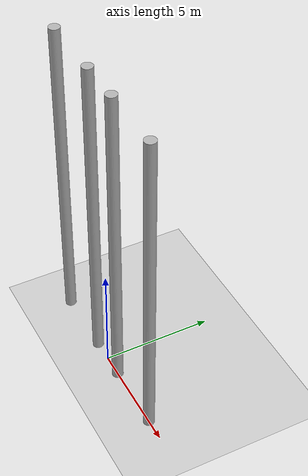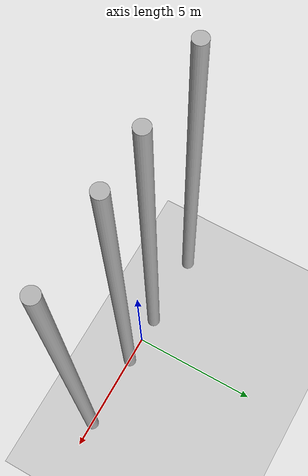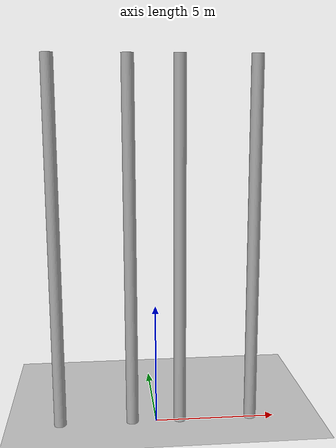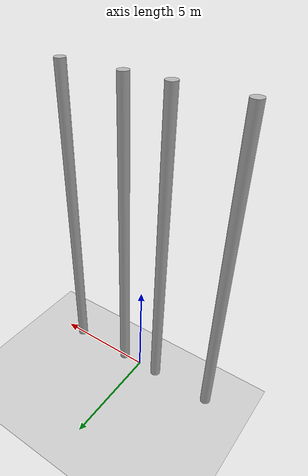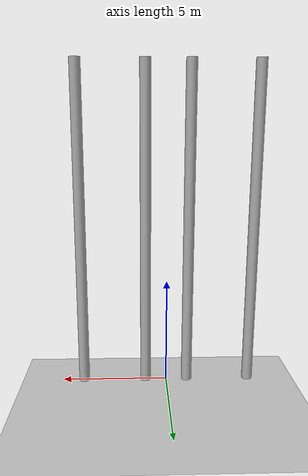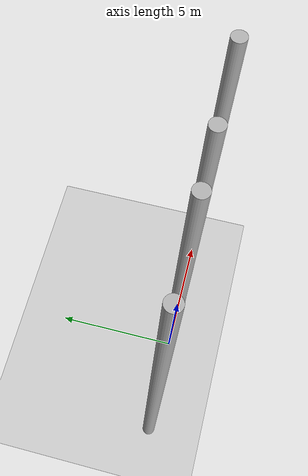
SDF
<?xml version="1.0" ?>
<sdf version="1.5">
  <world name="default">
    <!-- A global light source -->
    <include>
      <uri>model://sun</uri>
    </include>
    <!-- A ground plane -->
    <include>
      <uri>model://ground_plane</uri>
    </include>
    <physics name='default_physics' default='0' type='ode'>
      <gravity>0 0 -9.8066</gravity>
      <ode>
        <solver>
          <type>quick</type>
          <iters>10</iters>
          <sor>1.3</sor>
          <use_dynamic_moi_rescaling>0</use_dynamic_moi_rescaling>
        </solver>
        <constraints>
          <cfm>0</cfm>
          <erp>0.2</erp>
          <contact_max_correcting_vel>100</contact_max_correcting_vel>
          <contact_surface_layer>0.001</contact_surface_layer>
        </constraints>
      </ode>
      <max_step_size>0.002</max_step_size>
      <real_time_factor>1</real_time_factor>
      <real_time_update_rate>500</real_time_update_rate>
      <magnetic_field>6.0e-6 2.3e-5 -4.2e-5</magnetic_field>
    </physics>

    <!-- Cylinder Obstacles -->
    <model name="cylinder_1">
      <pose>1 0 7.5 0 0 0</pose>
      <link name="link">
        <visual name="visual">
          <geometry>
            <cylinder>
              <radius>0.25</radius>
              <length>15</length>
            </cylinder>
          </geometry>
          <material>
            <ambient>0.7 0.7 0.7 1</ambient>
          </material>
        </visual>
        <collision name="collision">
          <geometry>
            <cylinder>
              <radius>0.25</radius>
              <length>15</length>
            </cylinder>
          </geometry>
        </collision>
      </link>
    </model>

    <model name="cylinder_2">
      <pose>4 0 7.5 0 0 0</pose>
      <link name="link">
        <visual name="visual">
          <geometry>
            <cylinder>
              <radius>0.25</radius>
              <length>15</length>
            </cylinder>
          </geometry>
          <material>
            <ambient>0.7 0.7 0.7 1</ambient>
          </material>
        </visual>
        <collision name="collision">
          <geometry>
            <cylinder>
              <radius>0.25</radius>
              <length>15</length>
            </cylinder>
          </geometry>
        </collision>
      </link>
    </model>

    <model name="cylinder_3">
      <pose>-1 0 7.5 0 0 0</pose>
      <link name="link">
        <visual name="visual">
          <geometry>
            <cylinder>
              <radius>0.25</radius>
              <length>15</length>
            </cylinder>
          </geometry>
          <material>
            <ambient>0.7 0.7 0.7 1</ambient>
          </material>
        </visual>
        <collision name="collision">
          <geometry>
            <cylinder>
              <radius>0.25</radius>
              <length>15</length>
            </cylinder>
          </geometry>
        </collision>
      </link>
    </model>

    <model name="cylinder_4">
      <pose>-4 0 7.5 0 0 0</pose>
      <link name="link">
        <visual name="visual">
          <geometry>
            <cylinder>
              <radius>0.25</radius>
              <length>15</length>
            </cylinder>
          </geometry>
          <material>
            <ambient>0.7 0.7 0.7 1</ambient>
          </material>
        </visual>
        <collision name="collision">
          <geometry>
            <cylinder>
              <radius>0.25</radius>
              <length>15</length>
            </cylinder>
          </geometry>
        </collision>
      </link>
    </model>
  </world>
</sdf>
